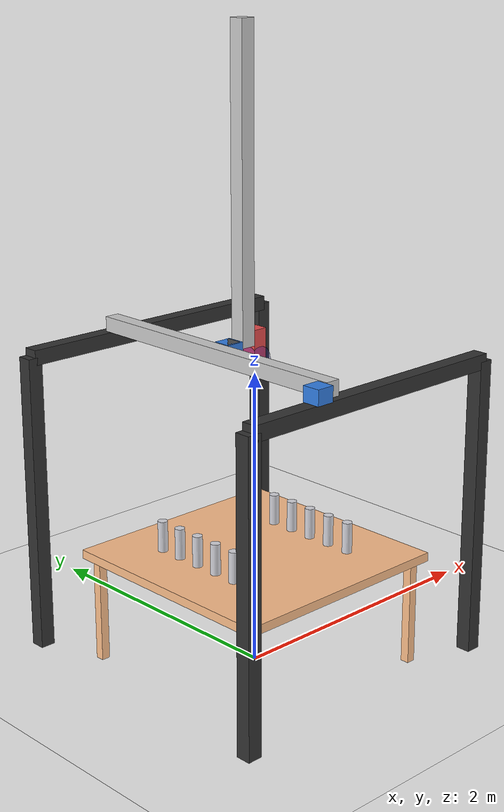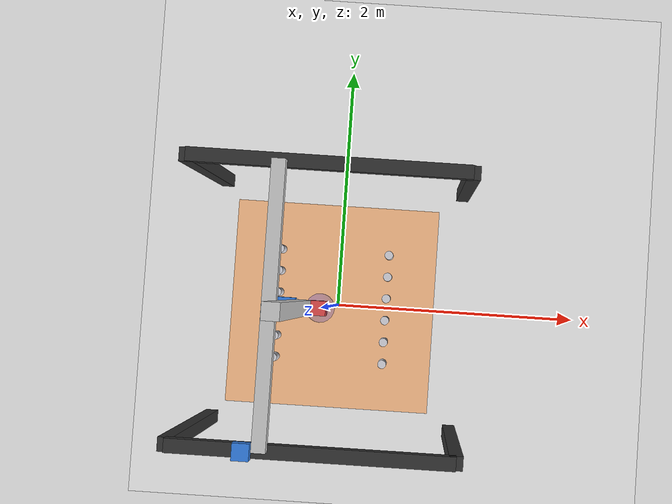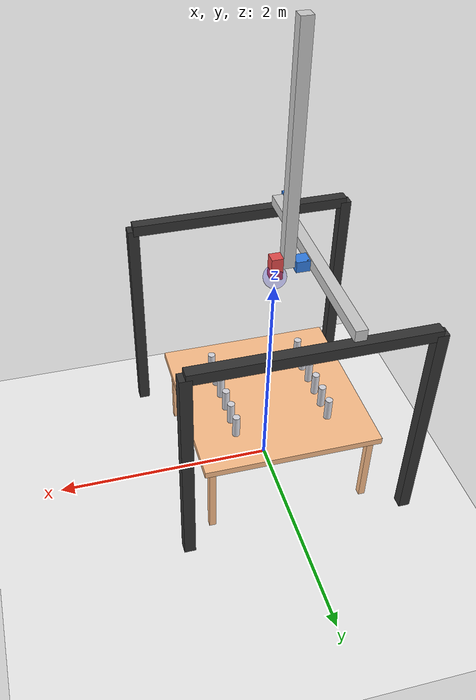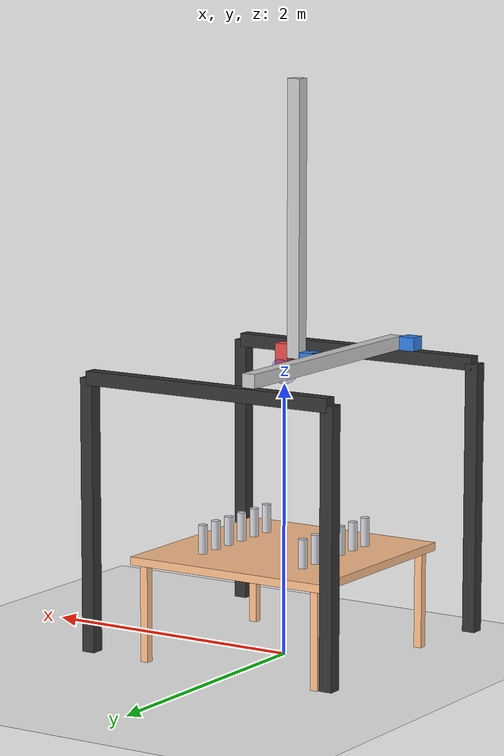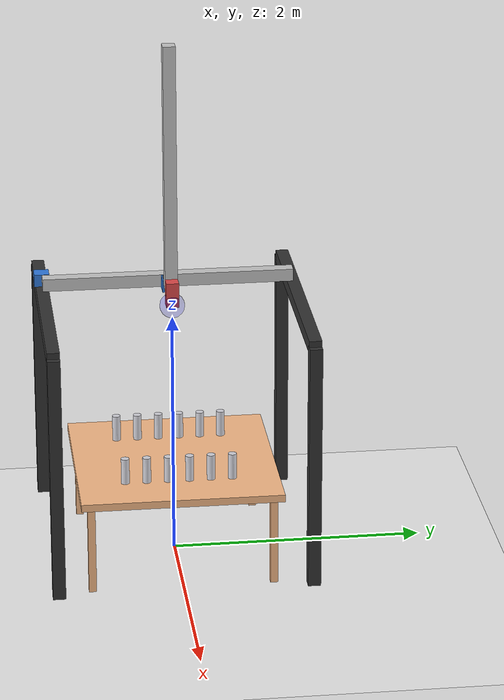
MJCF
<mujoco model="gantry_portal_sea_soft">
  <!-- Portal gantry with SEA joints (motor joint_i + passive spring_i) -->
  <compiler angle="degree" coordinate="local" inertiafromgeom="false"/>

  <option gravity="0 0 -9.81" timestep="0.0002"/>

  <default>
    <geom density="0"
          contype="1" conaffinity="1"
          friction="0.8 0.1 0.1"/>
    <joint limited="true"
           armature="0.01"
           frictionloss="0.0"/>
  </default>
    <asset>
    <texture type="skybox" builtin="gradient"
             rgb1="0.4 0.5 0.8" rgb2="0.3 0.3 0.3"
             width="512" height="512"/>
  </asset>

  <asset>
    <texture name="tile_tex" type="2d"
             builtin="checker"
             rgb1="0.92 0.92 0.92" rgb2="0.86 0.86 0.86"
             mark="edge" markrgb="0.55 0.55 0.55"
             width="1024" height="1024"/>
    <material name="tile_mat" texture="tile_tex"
              texrepeat="8 8" texuniform="true"
              specular="0.4" shininess="0.8"
              reflectance="0.05"/>
  </asset>
  <asset>
    <!-- optional: make it look nicer -->
    <material name="table_wood" rgba="1.0 0.753 0.549 1" specular="0.2" shininess="0.3"/>
  </asset>
  <asset>
    <material name="ceramic" rgba="0.85 0.85 0.88 1" specular="0.6" shininess="0.9"/>
  </asset>
  <contact>
    <!-- Exclude contacts across the spring joints -->
    <exclude body1="cursor_1"       body2="beam3"/>
    <exclude body1="cursor_2"       body2="beam4_carriage"/>
    <exclude body1="beam4"          body2="ee_link"/>
  </contact>

  <worldbody>
    <!-- Table body anchored to world (no joints => fixed) -->
    <geom name="ground" type="plane" size="5 5 0.1" rgba="0.95 0.95 0.95 1"  material="tile_mat"/>

    <body name="table" pos="0.0 0 0">
      <!-- tabletop: size = half-lengths -->
      <geom name="tabletop" type="box" material="table_wood"
            pos="0 0 0.75" size="0.8 0.8 0.03"
            friction="1.0 0.005 0.0001"/>

      <!-- legs (optional) -->
      <geom type="box" material="table_wood" pos=" 0.72  0.72 0.375" size="0.03 0.03 0.375"/>
      <geom type="box" material="table_wood" pos=" 0.72 -0.72 0.375" size="0.03 0.03 0.375"/>
      <geom type="box" material="table_wood" pos="-0.72  0.72 0.375" size="0.03 0.03 0.375"/>
      <geom type="box" material="table_wood" pos="-0.72 -0.72 0.375" size="0.03 0.03 0.375"/>
    </body>

	    <body name="vase_0_0" pos="-0.425 -0.425 0.751">
	      <freejoint/>
	      <inertial pos="0 0 0.12" mass="0.050"
			diaginertia="0.00027125 0.00027125 0.0000625"/>

	      <geom name="vase_col_0_0" type="cylinder"
		    pos="0 0 0.12" size="0.033 0.12"
		    rgba="0.85 0.85 0.88 1"
		    friction="0.8 0.005 0.0001"
		    density="0"/>
	    </body>

	    <body name="vase_0_1" pos="-0.425 -0.255 0.751">
	      <freejoint/>
	      <inertial pos="0 0 0.12" mass="0.050"
			diaginertia="0.00027125 0.00027125 0.0000625"/>

	      <geom name="vase_col_0_1" type="cylinder"
		    pos="0 0 0.12" size="0.033 0.12"
		    rgba="0.85 0.85 0.88 1"
		    friction="0.8 0.005 0.0001"
		    density="0"/>
	    </body>

	    <body name="vase_0_2" pos="-0.425 -0.08499999999999996 0.751">
	      <freejoint/>
	      <inertial pos="0 0 0.12" mass="0.050"
			diaginertia="0.00027125 0.00027125 0.0000625"/>

	      <geom name="vase_col_0_2" type="cylinder"
		    pos="0 0 0.12" size="0.033 0.12"
		    rgba="0.85 0.85 0.88 1"
		    friction="0.8 0.005 0.0001"
		    density="0"/>
	    </body>

	    <body name="vase_0_3" pos="-0.425 0.08500000000000002 0.751">
	      <freejoint/>
	      <inertial pos="0 0 0.12" mass="0.050"
			diaginertia="0.00027125 0.00027125 0.0000625"/>

	      <geom name="vase_col_0_3" type="cylinder"
		    pos="0 0 0.12" size="0.033 0.12"
		    rgba="0.85 0.85 0.88 1"
		    friction="0.8 0.005 0.0001"
		    density="0"/>
	    </body>

	    <body name="vase_0_4" pos="-0.425 0.25500000000000006 0.751">
	      <freejoint/>
	      <inertial pos="0 0 0.12" mass="0.050"
			diaginertia="0.00027125 0.00027125 0.0000625"/>

	      <geom name="vase_col_0_4" type="cylinder"
		    pos="0 0 0.12" size="0.033 0.12"
		    rgba="0.85 0.85 0.88 1"
		    friction="0.8 0.005 0.0001"
		    density="0"/>
	    </body>

	    <body name="vase_0_5" pos="-0.425 0.4250000000000001 0.751">
	      <freejoint/>
	      <inertial pos="0 0 0.12" mass="0.050"
			diaginertia="0.00027125 0.00027125 0.0000625"/>

	      <geom name="vase_col_0_5" type="cylinder"
		    pos="0 0 0.12" size="0.033 0.12"
		    rgba="0.85 0.85 0.88 1"
		    friction="0.8 0.005 0.0001"
		    density="0"/>
	    </body>

	    <body name="vase_1_0" pos="0.425 -0.425 0.751">
	      <freejoint/>
	      <inertial pos="0 0 0.12" mass="0.050"
			diaginertia="0.00027125 0.00027125 0.0000625"/>

	      <geom name="vase_col_1_0" type="cylinder"
		    pos="0 0 0.12" size="0.033 0.12"
		    rgba="0.85 0.85 0.88 1"
		    friction="0.8 0.005 0.0001"
		    density="0"/>
	    </body>

	    <body name="vase_1_1" pos="0.425 -0.255 0.751">
	      <freejoint/>
	      <inertial pos="0 0 0.12" mass="0.050"
			diaginertia="0.00027125 0.00027125 0.0000625"/>

	      <geom name="vase_col_1_1" type="cylinder"
		    pos="0 0 0.12" size="0.033 0.12"
		    rgba="0.85 0.85 0.88 1"
		    friction="0.8 0.005 0.0001"
		    density="0"/>
	    </body>

	    <body name="vase_1_2" pos="0.425 -0.08499999999999996 0.751">
	      <freejoint/>
	      <inertial pos="0 0 0.12" mass="0.050"
			diaginertia="0.00027125 0.00027125 0.0000625"/>

	      <geom name="vase_col_1_2" type="cylinder"
		    pos="0 0 0.12" size="0.033 0.12"
		    rgba="0.85 0.85 0.88 1"
		    friction="0.8 0.005 0.0001"
		    density="0"/>
	    </body>

	    <body name="vase_1_3" pos="0.425 0.08500000000000002 0.751">
	      <freejoint/>
	      <inertial pos="0 0 0.12" mass="0.050"
			diaginertia="0.00027125 0.00027125 0.0000625"/>

	      <geom name="vase_col_1_3" type="cylinder"
		    pos="0 0 0.12" size="0.033 0.12"
		    rgba="0.85 0.85 0.88 1"
		    friction="0.8 0.005 0.0001"
		    density="0"/>
	    </body>

	    <body name="vase_1_4" pos="0.425 0.25500000000000006 0.751">
	      <freejoint/>
	      <inertial pos="0 0 0.12" mass="0.050"
			diaginertia="0.00027125 0.00027125 0.0000625"/>

	      <geom name="vase_col_1_4" type="cylinder"
		    pos="0 0 0.12" size="0.033 0.12"
		    rgba="0.85 0.85 0.88 1"
		    friction="0.8 0.005 0.0001"
		    density="0"/>
	    </body>

	    <body name="vase_1_5" pos="0.425 0.4250000000000001 0.751">
	      <freejoint/>
	      <inertial pos="0 0 0.12" mass="0.050"
			diaginertia="0.00027125 0.00027125 0.0000625"/>

	      <geom name="vase_col_1_5" type="cylinder"
		    pos="0 0 0.12" size="0.033 0.12"
		    rgba="0.85 0.85 0.88 1"
		    friction="0.8 0.005 0.0001"
		    density="0"/>
	    </body>

    <!-- Fixed portal structure -->
    <body name="chassis" pos="0 0 0.1">
      <inertial pos="0 0 0"
                mass="0.3049"
                diaginertia="0.1 0.1 0.1"/>

      <!-- Legs (height=2 m). Base corners: (-1,-1,0), (1,-1,0), (-1,1,0), (1,1,0) -->
      <!-- MJCF box 'size' = half-lengths -->
      <geom name="leg1_geom" type="box" size="0.05 0.05 1.0" pos="-1 -1 1" rgba="0.2 0.2 0.2 1"/>
      <geom name="leg2_geom" type="box" size="0.05 0.05 1.0" pos=" 1 -1 1" rgba="0.2 0.2 0.2 1"/>
      <geom name="leg3_geom" type="box" size="0.05 0.05 1.0" pos="-1  1 1" rgba="0.2 0.2 0.2 1"/>
      <geom name="leg4_geom" type="box" size="0.05 0.05 1.0" pos=" 1  1 1" rgba="0.2 0.2 0.2 1"/>

      <!-- Top beams at z=2 (length=2 m along x) -->
      <geom name="beam1_geom" type="box" size="1.0 0.05 0.05" pos="0 -1 2" rgba="0.2 0.2 0.2 1"/>
      <geom name="beam2_geom" type="box" size="1.0 0.05 0.05" pos="0  1 2" rgba="0.2 0.2 0.2 1"/>

      <!-- X stage on beam1: anchor at leg1 top = (-1,-1,2) -->

      <body name="cursor_1" pos="-0.45999999999999996 -1 2.1">
        <inertial pos="0 0 0"
                  mass="0.5735"
                  diaginertia="0.000866667 0.000866667 0.0012"/>
        <joint name="joint_1" type="slide" axis="1 0 0" range="-0.53 1.2"/>
        <geom name="cursor_1_geom" type="box" size="0.06 0.06 0.05" rgba="0.2 0.5 0.9 1"/>

        <!-- Passive spring along x: cursor_1 -> beam3 -->
	<body name="beam3" pos="0.12 0 0">
          <inertial pos="0 1 0"
                    mass="0.3555"
                    diaginertia="0.334167 0.001667 0.334167"/>

          <joint name="spring_1" type="slide" axis="1 0 0"
                 range="-0.18 0.18"
                 springref="0"
                 stiffness="174065.5199"
                 damping="68.9228"/>

          <!-- beam3: 2 m along +y (from y=-1 to y=+1 globally) -->
          <geom name="beam3_geom" type="box"
                size="0.05 1.0 0.05"
                pos="0 1 0"
                rgba="0.8 0.8 0.8 1"/>

          <!-- Y stage on beam3 (moves along +y) -->
          <body name="cursor_2" pos="0.12 1.0 0">
            <inertial pos="0 0 0"
                      mass="0.345"
                      diaginertia="0.000866667 0.000866667 0.0012"/>
            <joint name="joint_2" type="slide" axis="0 1 0" range="-0.85 0.85"/>
            <geom name="cursor_2_geom" type="box" size="0.06 0.06 0.05" rgba="0.2 0.5 0.9 1"/>

            <!-- Passive spring_2 (as requested: x-direction) -->
            <body name="beam4_carriage" pos="0 0 0">
              <inertial pos="0 0 0"
                        mass="0.3927"
                        diaginertia="0.0002 0.0002 0.0002"/>

              <joint name="spring_2" type="slide" axis="0 1 0"
                     range="-0.18 0.18"
                     springref="0"
                     stiffness="166216.6656"
                     damping="59.2526"/>

              <geom name="beam4_carriage_geom" type="box" size="0.05 0.05 0.05" rgba="0.3 0.3 0.3 1"/>

              <!-- Vertical actuator: prismatic joint_3 (z-direction) -->
              <!-- Interpret 'rest: lower end aligned with beam3' as joint_3=0; extend down with negative z -->
              <body name="beam4" pos="0.12 0 0">
                <inertial pos="0 0 1"
                          mass="0.603"
                          diaginertia="0.334167 0.334167 0.001667"/>
                <joint name="joint_3" type="slide" axis="0 0 -1" range="-0.05 2.0"/>

                <!-- beam4: vertical member (length=2 m), link frame at its lower end; geom centered at z=+1 -->
                <geom name="beam4_geom" type="box"
                      size="0.05 0.05 1.0"
                      pos="0 0 1"
                      rgba="0.8 0.8 0.8 1"/>

                <!-- Passive spring_3 between beam4 lower end and end-effector -->
                <body name="ee_link" pos="0.1 0 0.05">
                  <inertial pos="0 0 -0.05"
                            mass="0.359"
                            diaginertia="0.000333333 0.000333333 0.000333333"/>

                  <joint name="spring_3" type="slide" axis="0 0 1"
                         range="-0.18 0.18"
                         springref="0"
                         stiffness="113657.8524"
                         damping="55.3827"/>

                  <geom name="ee_geom" type="box"
                        size="0.05 0.05 0.10"
                        pos="0 0 -0.05"
                        rgba="0.9 0.3 0.3 1"/>

                  <site name="ee" pos="0.0 0 -0.15000000000000002" size="0.10" rgba="0.0 0.0 1.0 0.1"/>
                </body>
              </body>
            </body>
          </body>
        </body>
      </body>
    </body>
  </worldbody>

  <actuator>
    <motor name="motor_1" joint="joint_1"
           ctrllimited="true" ctrlrange="-300 300"
           forcelimited="true" forcerange="-300 300"
           gear="1"/>
    <motor name="motor_2" joint="joint_2"
           ctrllimited="true" ctrlrange="-300 300"
           forcelimited="true" forcerange="-300 300"
           gear="1"/>
    <motor name="motor_3" joint="joint_3"
           ctrllimited="true" ctrlrange="-300 300"
           forcelimited="true" forcerange="-300 300"
           gear="1"/>
  </actuator>
</mujoco>
